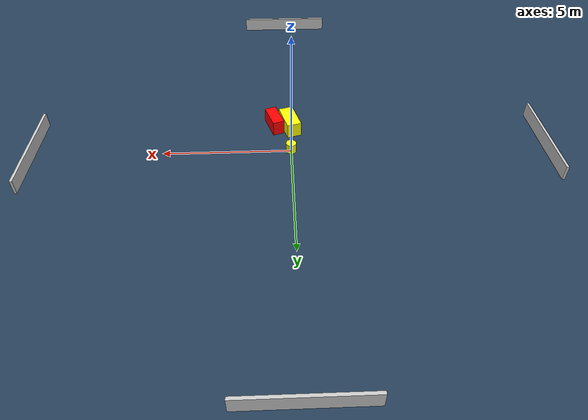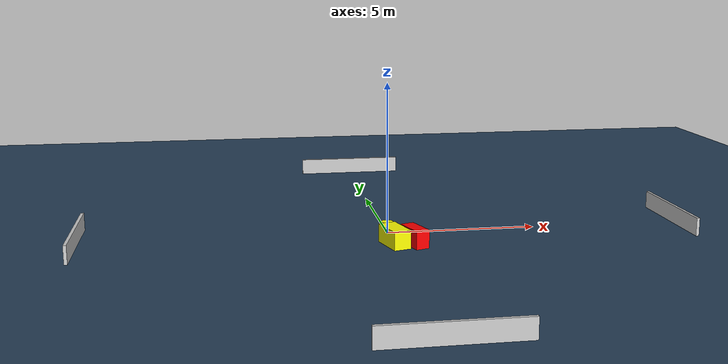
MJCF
<?xml version="1.0" ?>
<mujoco model="generated_environment">
  <option timestep="0.01" integrator="RK4" cone="elliptic"/>
  <default>
    <geom density="1"/>
  </default>
  <asset>
    <texture builtin="gradient" height="3072" name="skybox" rgb1="0.3 0.5 0.7" rgb2="0 0 0" type="skybox" width="512"/>
    <texture builtin="checker" height="300" name="groundplane" rgb1="0.2 0.3 0.4" rgb2="0.1 0.2 0.3" type="2d" width="300"/>
    <material name="groundplane" reflectance="0.2" texrepeat="5 5" texture="groundplane"/>
  </asset>
  <worldbody>
    <light dir="0 0 -1" directional="true" pos="0 0 1.5"/>
    <geom condim="3" friction="0.5 0.005 0.001" material="groundplane" name="floor" pos="0 0 0" size="0 0 0.05" type="plane"/>
    <body name="walls">
      <geom name="wall_1" condim="4" pos="-10.0 0.0 0.3" rgba="0.800000011920929 0.800000011920929 0.800000011920929 1.0" size="0.05 2.0 0.3" type="box"/>
      <geom name="wall_2" condim="4" pos="10.0 0.0 0.3" rgba="0.800000011920929 0.800000011920929 0.800000011920929 1.0" size="0.05 2.0 0.3" type="box"/>
      <geom name="wall_3" condim="4" pos="0.0 -10.0 0.3" rgba="0.800000011920929 0.800000011920929 0.800000011920929 1.0" size="2.0 0.05 0.3" type="box"/>
      <geom name="wall_4" condim="4" pos="0.0 10.0 0.3" rgba="0.800000011920929 0.800000011920929 0.800000011920929 1.0" size="2.0 0.05 0.3" type="box"/>
    </body>
    <body name="robot">
      <joint name="joint_x" type="slide" pos="0 0 0" axis="1 0 0"/>
      <joint name="joint_y" type="slide" pos="0 0 0" axis="0 1 0"/>
      <geom name="robot" type="cylinder" pos="0.0 0.0 0.2" size="0.2 0.2 0.0" mass="5.0" friction="1.0 0.005 0.0001" condim="4" rgba="1.0 1.0 0.0 1.0"/>
    </body>
    <body name="obstacle_1_movable">
      <geom name="obstacle_1_movable" condim="4" pos="0.00276262700687243 -1.4717045770686294 0.3" euler="0 0 285.8760400755597" friction="0.0 0.005 0.001" rgba="1.0 1.0 0.0 1.0" size="0.5938498035545958 0.28908706373967175 0.3" type="box" mass="0.1"/>
      <joint type="free"/>
    </body>
    <body name="obstacle_2_static">
      <geom name="obstacle_2_static" condim="4" pos="0.6292120006040861 -1.5718509028186725 0.3" euler="0 0 18.555902176987452" friction="0.0 0.005 0.001" rgba="1.0 0.0 0.0 1.0" size="0.22972481917635018 0.5230133448483426 0.3" type="box"/>
    </body>
  </worldbody>
  <actuator>
    <motor name="actuator_x" joint="joint_x" gear="1" ctrlrange="-1 1"/>
    <motor name="actuator_y" joint="joint_y" gear="1" ctrlrange="-1 1"/>
  </actuator>
</mujoco>
